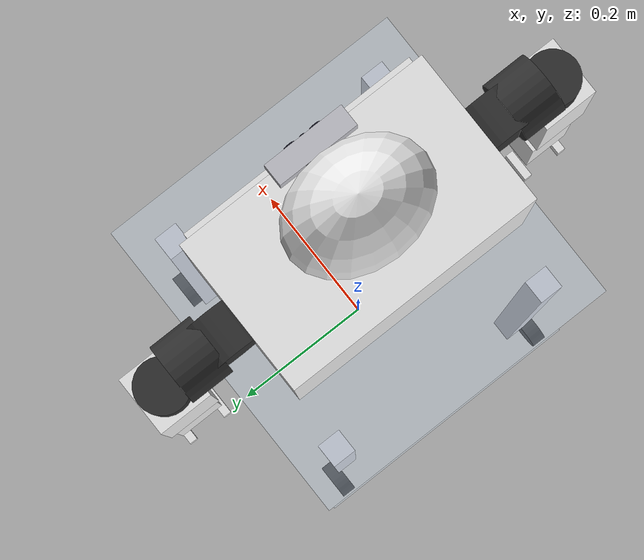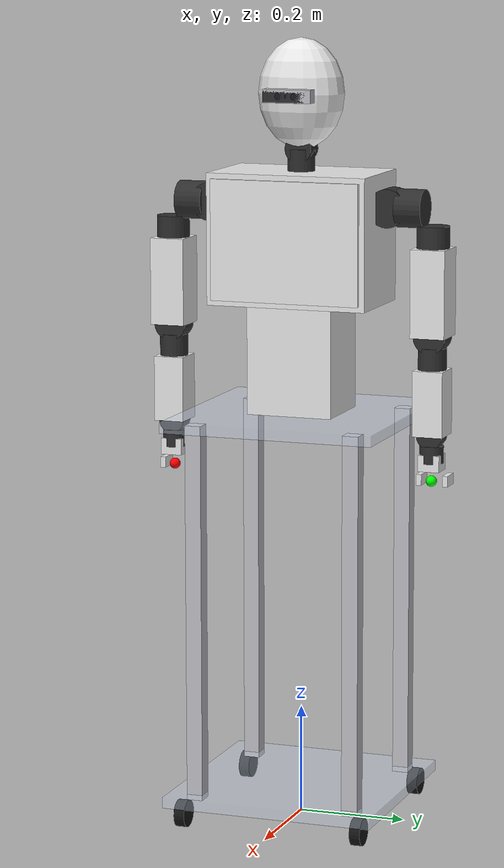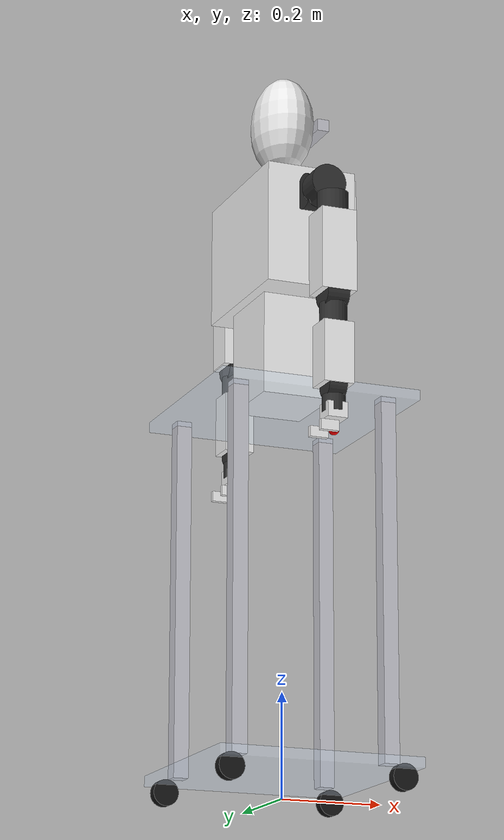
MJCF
<mujoco model="custom_humanoid_steering">
  <compiler angle="radian" autolimits="true"/>

  <asset>
    <!-- Visual Materials -->
    <material name="white_plastic" rgba="0.92 0.92 0.92 1" shininess="0.3" specular="0.2"/>
    <material name="metal_silver" rgba="0.75 0.75 0.78 1" shininess="0.8" specular="0.7"/>
    <material name="motor_black" rgba="0.18 0.18 0.18 1" shininess="0.4" specular="0.3"/>
    <material name="acrylic_glass" rgba="0.85 0.92 1.0 0.35" shininess="0.9" specular="0.9"/>
    <material name="wheel_rubber" rgba="0.08 0.08 0.08 1" shininess="0.1" specular="0.1"/>
    <material name="face_screen" rgba="0.1 0.1 0.15 1" shininess="0.9" specular="0.9"/>
  </asset>

  <default>
    <!-- Actuator and Joint defaults for Dynamixel XM430/XH430 type servos -->
    <joint damping="1.5" armature="0.06" frictionloss="0.05"/>
    <position kp="45.0" forcerange="-10 10"/>

    <!-- Hierarchical Defaults to avoid duplicate classes -->
    <default class="visual">
      <geom contype="0" conaffinity="0" group="2"/>
      <default class="stand_part">
        <geom material="metal_silver"/>
      </default>
      <default class="white_shell_visual">
        <geom material="white_plastic"/>
      </default>
      <default class="motor_block">
        <geom material="motor_black" type="cylinder"/>
      </default>
    </default>

    <default class="collision">
      <geom group="3" condim="3" friction="1.0 0.005 0.0001"/>
      <default class="white_shell_collision">
        <geom material="white_plastic"/>
      </default>
    </default>
  </default>

  <worldbody>
    <!-- Base Mobile Stand (Fixed to world for stability, wheel spin is cosmetic/passive) -->
    <body name="stand_base" pos="0 0 0.05">
      <!-- Acrylic Bottom Plate -->
      <geom name="base_plate" type="box" size="0.2 0.2 0.01" material="acrylic_glass" class="collision"/>
      <geom type="box" size="0.2 0.2 0.01" material="acrylic_glass" class="visual"/>

      <!-- Cosmetic Caster Wheels -->
      <body name="wheel_fl" pos="0.17 0.17 -0.025">
        <geom type="cylinder" size="0.025 0.01" quat="0.7071 0.7071 0 0" material="wheel_rubber" class="visual"/>
      </body>
      <body name="wheel_fr" pos="0.17 -0.17 -0.025">
        <geom type="cylinder" size="0.025 0.01" quat="0.7071 0.7071 0 0" material="wheel_rubber" class="visual"/>
      </body>
      <body name="wheel_bl" pos="-0.17 0.17 -0.025">
        <geom type="cylinder" size="0.025 0.01" quat="0.7071 0.7071 0 0" material="wheel_rubber" class="visual"/>
      </body>
      <body name="wheel_br" pos="-0.17 -0.17 -0.025">
        <geom type="cylinder" size="0.025 0.01" quat="0.7071 0.7071 0 0" material="wheel_rubber" class="visual"/>
      </body>

      <!-- Aluminum Profile Extrusions (Vertical Frame) -->
      <geom class="stand_part" type="box" size="0.015 0.015 0.35" pos="0.15 0.15 0.35"/>
      <geom class="stand_part" type="box" size="0.015 0.015 0.35" pos="0.15 -0.15 0.35"/>
      <geom class="stand_part" type="box" size="0.015 0.015 0.35" pos="-0.15 0.15 0.35"/>
      <geom class="stand_part" type="box" size="0.015 0.015 0.35" pos="-0.15 -0.15 0.35"/>

      <!-- Acrylic Top Plate -->
      <geom type="box" size="0.2 0.2 0.01" pos="0 0 0.7" material="acrylic_glass" class="collision"/>
      <geom type="box" size="0.2 0.2 0.01" pos="0 0 0.7" material="acrylic_glass" class="visual"/>

      <!-- ==================== ROBOT BODY START ==================== -->
      <body name="torso" pos="0 0 0.71">
        <!-- Lower Trapezoidal Torso Section -->
        <geom class="white_shell_collision" type="box" size="0.07 0.08 0.1" pos="0 0 0.1"/>
        <geom class="white_shell_visual" type="box" size="0.07 0.08 0.1" pos="0 0 0.1"/>

        <!-- Upper Chest Section -->
        <geom class="white_shell_collision" type="box" size="0.09 0.15 0.12" pos="0 0 0.32"/>
        <geom class="white_shell_visual" type="box" size="0.09 0.15 0.12" pos="0 0 0.32"/>
        <!-- Chest Front Cover plate detail -->
        <geom class="white_shell_visual" type="box" size="0.005 0.14 0.11" pos="0.092 0 0.32"/>

        <!-- ==================== HEAD (2 DOF) ==================== -->
        <body name="head_yaw_link" pos="0 0 0.44">
          <joint name="head_yaw" type="hinge" axis="0 0 1" range="-1.57 1.57"/>
          <geom class="motor_block" size="0.025 0.02" pos="0 0 0.02"/>

          <body name="head_tilt_link" pos="0 0 0.04">
            <joint name="head_tilt" type="hinge" axis="0 1 0" range="-0.8 0.8"/>
            <geom class="motor_block" size="0.025 0.02" quat="0.7071 0 0.7071 0" pos="0 0 0"/>

            <!-- Oval Head Shell -->
            <geom class="white_shell_collision" type="ellipsoid" size="0.06 0.08 0.1" pos="0 0 0.1"/>
            <geom class="white_shell_visual" type="ellipsoid" size="0.06 0.08 0.1" pos="0 0 0.1"/>

            <!-- RealSense-Style Depth Camera Assembly -->
            <geom type="box" size="0.005 0.015 0.008" pos="0.055 0 0.1" material="motor_black" class="visual"/>
            <geom type="box" size="0.012 0.045 0.012" pos="0.07 0 0.1" material="metal_silver" class="visual"/>
            <geom type="box" size="0.011 0.044 0.011" pos="0.071 0 0.1" material="motor_black" class="visual"/>
            <geom type="cylinder" size="0.006 0.002" pos="0.082 0.015 0.1" quat="0.7071 0 0.7071 0" material="face_screen" class="visual"/>
            <geom type="cylinder" size="0.006 0.002" pos="0.082 -0.015 0.1" quat="0.7071 0 0.7071 0" material="face_screen" class="visual"/>
            <geom type="cylinder" size="0.003 0.002" pos="0.082 0 0.1" quat="0.7071 0 0.7071 0" material="face_screen" class="visual"/>

            <camera name="head_camera" pos="0.082 0 0.1" xyaxes="0 -1 0 0 0 1" fovy="60"/>
          </body>
        </body>

        <!-- ==================== LEFT ARM (7 DOF + Gripper) ==================== -->
        <!-- Shoulder Pitch (J1) -->
        <body name="l_sho_pitch_link" pos="0 0.17 0.38">
          <joint name="l_sho_pitch" type="hinge" axis="0 1 0" range="-2.5 2.5"/>
          <geom class="motor_block" size="0.035 0.025" quat="0.7071 0 0.7071 0" pos="0 0 0"/>

          <!-- Shoulder Roll (J2) -->
          <body name="l_sho_roll_link" pos="0 0.04 0">
            <joint name="l_sho_roll" type="hinge" axis="1 0 0" range="-0.2 2.0"/>
            <geom class="motor_block" size="0.035 0.025" quat="0.7071 0.7071 0 0" pos="0 0 0"/>

            <!-- Shoulder Yaw (J3) -->
            <body name="l_sho_yaw_link" pos="0 0.04 -0.05">
              <joint name="l_sho_yaw" type="hinge" axis="0 0 1" range="-1.57 1.57"/>
              <geom class="motor_block" size="0.03 0.02" pos="0 0 0"/>

              <!-- Upper Arm Link -->
              <geom class="white_shell_collision" type="box" size="0.035 0.032 0.08" pos="0 0 -0.1"/>
              <geom class="white_shell_visual" type="box" size="0.035 0.032 0.08" pos="0 0 -0.1"/>

              <!-- Elbow Pitch (J4) -->
              <body name="l_el_pitch_link" pos="0 0 -0.18">
                <joint name="l_el_pitch" type="hinge" axis="0 1 0" range="-2.4 0.1"/>
                <geom class="motor_block" size="0.03 0.022" quat="0.7071 0 0.7071 0" pos="0 0 0"/>

                <!-- Forearm Yaw (J5) -->
                <body name="l_forearm_yaw_link" pos="0 0 -0.04">
                  <joint name="l_forearm_yaw" type="hinge" axis="0 0 1" range="-2.8 2.8"/>
                  <geom class="motor_block" size="0.026 0.02" pos="0 0 0"/>

                  <!-- Forearm Link -->
                  <geom class="white_shell_collision" type="box" size="0.03 0.028 0.06" pos="0 0 -0.08"/>
                  <geom class="white_shell_visual" type="box" size="0.03 0.028 0.06" pos="0 0 -0.08"/>

                  <!-- Wrist Pitch (J6) -->
                  <body name="l_wrist_pitch_link" pos="0 0 -0.14">
                    <joint name="l_wrist_pitch" type="hinge" axis="0 1 0" range="-1.57 1.57"/>
                    <geom class="motor_block" size="0.024 0.018" quat="0.7071 0 0.7071 0" pos="0 0 0"/>

                    <!-- Wrist Yaw (J7) -->
                    <body name="l_wrist_yaw_link" pos="0 0 -0.035">
                      <joint name="l_wrist_yaw" type="hinge" axis="1 0 0" range="-1.57 1.57"/>
                      <geom class="motor_block" size="0.022 0.016" pos="0 0 0"/>

                      <!-- Gripper Base Box -->
                      <geom class="white_shell_collision" type="box" size="0.02 0.02 0.015" pos="0 0 -0.015"/>
                      <geom class="white_shell_visual" type="box" size="0.02 0.02 0.015" pos="0 0 -0.015"/>

                      <!-- End-effector tracking site -->
                      <site name="l_eef" pos="0 0 -0.05" size="0.01" rgba="0 1 0 1"/>

                      <!-- Parallel Gripper (Slide fingers in local Y-axis) -->
                      <body name="l_gripper_l_finger" pos="-0.02 0.025 -0.04">
                        <joint name="l_finger_l_joint" type="slide" axis="0 -1 0" range="0 0.02"/>
                        <geom class="white_shell_collision" type="box" size="0.018 0.005 0.01" pos="0 0 -0.01"/>
                        <geom class="white_shell_visual" type="box" size="0.018 0.005 0.01" pos="0 0 -0.01"/>
                      </body>
                      <body name="l_gripper_r_finger" pos="-0.02 -0.025 -0.04">
                        <joint name="l_finger_r_joint" type="slide" axis="0 1 0" range="0 0.02"/>
                        <geom class="white_shell_collision" type="box" size="0.018 0.005 0.01" pos="0 0 -0.01"/>
                        <geom class="white_shell_visual" type="box" size="0.018 0.005 0.01" pos="0 0 -0.01"/>
                      </body>
                    </body>
                  </body>
                </body>
              </body>
            </body>
          </body>
        </body>

        <!-- ==================== RIGHT ARM (7 DOF + Gripper) ==================== -->
        <!-- Shoulder Pitch (J1) -->
        <body name="r_sho_pitch_link" pos="0 -0.17 0.38">
          <joint name="r_sho_pitch" type="hinge" axis="0 -1 0" range="-2.5 2.5"/>
          <geom class="motor_block" size="0.035 0.025" quat="0.7071 0 0.7071 0" pos="0 0 0"/>

          <!-- Shoulder Roll (J2) -->
          <body name="r_sho_roll_link" pos="0 -0.04 0">
            <joint name="r_sho_roll" type="hinge" axis="-1 0 0" range="-2.0 0.2"/>
            <geom class="motor_block" size="0.035 0.025" quat="0.7071 -0.7071 0 0" pos="0 0 0"/>

            <!-- Shoulder Yaw (J3) -->
            <body name="r_sho_yaw_link" pos="0 -0.04 -0.05">
              <joint name="r_sho_yaw" type="hinge" axis="0 0 -1" range="-1.57 1.57"/>
              <geom class="motor_block" size="0.03 0.02" pos="0 0 0"/>

              <!-- Upper Arm Link -->
              <geom class="white_shell_collision" type="box" size="0.035 0.032 0.08" pos="0 0 -0.1"/>
              <geom class="white_shell_visual" type="box" size="0.035 0.032 0.08" pos="0 0 -0.1"/>

              <!-- Elbow Pitch (J4) -->
              <body name="r_el_pitch_link" pos="0 0 -0.18">
                <joint name="r_el_pitch" type="hinge" axis="0 -1 0" range="-0.1 2.4"/>
                <geom class="motor_block" size="0.03 0.022" quat="0.7071 0 0.7071 0" pos="0 0 0"/>

                <!-- Forearm Yaw (J5) -->
                <body name="r_forearm_yaw_link" pos="0 0 -0.04">
                  <joint name="r_forearm_yaw" type="hinge" axis="0 0 -1" range="-2.8 2.8"/>
                  <geom class="motor_block" size="0.026 0.02" pos="0 0 0"/>

                  <!-- Forearm Link -->
                  <geom class="white_shell_collision" type="box" size="0.03 0.028 0.06" pos="0 0 -0.08"/>
                  <geom class="white_shell_visual" type="box" size="0.03 0.028 0.06" pos="0 0 -0.08"/>

                  <!-- Wrist Pitch (J6) -->
                  <body name="r_wrist_pitch_link" pos="0 0 -0.14">
                    <joint name="r_wrist_pitch" type="hinge" axis="0 -1 0" range="-1.57 1.57"/>
                    <geom class="motor_block" size="0.024 0.018" quat="0.7071 0 0.7071 0" pos="0 0 0"/>

                    <!-- Wrist Yaw (J7) -->
                    <body name="r_wrist_yaw_link" pos="0 0 -0.035">
                      <joint name="r_wrist_yaw" type="hinge" axis="-1 0 0" range="-1.57 1.57"/>
                      <geom class="motor_block" size="0.022 0.016" pos="0 0 0"/>

                      <!-- Gripper Base Box -->
                      <geom class="white_shell_collision" type="box" size="0.02 0.02 0.015" pos="0 0 -0.015"/>
                      <geom class="white_shell_visual" type="box" size="0.02 0.02 0.015" pos="0 0 -0.015"/>

                      <!-- End-effector tracking site -->
                      <site name="r_eef" pos="0 0 -0.05" size="0.01" rgba="1 0 0 1"/>

                      <!-- Parallel Gripper (Slide fingers in local Y-axis) -->
                      <body name="r_gripper_l_finger" pos="-0.02 0.025 -0.04">
                        <joint name="r_finger_l_joint" type="slide" axis="0 -1 0" range="0 0.02"/>
                        <geom class="white_shell_collision" type="box" size="0.018 0.005 0.01" pos="0 0 -0.01"/>
                        <geom class="white_shell_visual" type="box" size="0.018 0.005 0.01" pos="0 0 -0.01"/>
                      </body>
                      <body name="r_gripper_r_finger" pos="-0.02 -0.025 -0.04">
                        <joint name="r_finger_r_joint" type="slide" axis="0 1 0" range="0 0.02"/>
                        <geom class="white_shell_collision" type="box" size="0.018 0.005 0.01" pos="0 0 -0.01"/>
                        <geom class="white_shell_visual" type="box" size="0.018 0.005 0.01" pos="0 0 -0.01"/>
                      </body>
                    </body>
                  </body>
                </body>
              </body>
            </body>
          </body>
        </body>
      </body>
    </body>
  </worldbody>

  <!-- Actuators (Position/Torque Control) -->
  <actuator>
    <!-- Head (2 DOF) -->
    <position name="head_yaw_act" joint="head_yaw" ctrlrange="-1.57 1.57"/>
    <position name="head_tilt_act" joint="head_tilt" ctrlrange="-0.8 0.8"/>

    <!-- Left Arm (7 DOF - Torque Motors) -->
    <motor name="l_sho_pitch_act" joint="l_sho_pitch" ctrlrange="-25 25"/>
    <motor name="l_sho_roll_act" joint="l_sho_roll" ctrlrange="-25 25"/>
    <motor name="l_sho_yaw_act" joint="l_sho_yaw" ctrlrange="-25 25"/>
    <motor name="l_el_pitch_act" joint="l_el_pitch" ctrlrange="-25 25"/>
    <motor name="l_forearm_yaw_act" joint="l_forearm_yaw" ctrlrange="-25 25"/>
    <motor name="l_wrist_pitch_act" joint="l_wrist_pitch" ctrlrange="-25 25"/>
    <motor name="l_wrist_yaw_act" joint="l_wrist_yaw" ctrlrange="-25 25"/>
    <!-- Left Gripper (Slide joint, range 0 to 0.02m) -->
    <position name="l_gripper_l_act" joint="l_finger_l_joint" ctrlrange="0 0.02" kp="200.0" forcerange="-10 10"/>
    <position name="l_gripper_r_act" joint="l_finger_r_joint" ctrlrange="0 0.02" kp="200.0" forcerange="-10 10"/>

    <!-- Right Arm (7 DOF - Torque Motors) -->
    <motor name="r_sho_pitch_act" joint="r_sho_pitch" ctrlrange="-25 25"/>
    <motor name="r_sho_roll_act" joint="r_sho_roll" ctrlrange="-25 25"/>
    <motor name="r_sho_yaw_act" joint="r_sho_yaw" ctrlrange="-25 25"/>
    <motor name="r_el_pitch_act" joint="r_el_pitch" ctrlrange="-25 25"/>
    <motor name="r_forearm_yaw_act" joint="r_forearm_yaw" ctrlrange="-25 25"/>
    <motor name="r_wrist_pitch_act" joint="r_wrist_pitch" ctrlrange="-25 25"/>
    <motor name="r_wrist_yaw_act" joint="r_wrist_yaw" ctrlrange="-25 25"/>
    <!-- Right Gripper (Slide joint, range 0 to 0.02m) -->
    <position name="r_gripper_l_act" joint="r_finger_l_joint" ctrlrange="0 0.02" kp="200.0" forcerange="-10 10"/>
    <position name="r_gripper_r_act" joint="r_finger_r_joint" ctrlrange="0 0.02" kp="200.0" forcerange="-10 10"/>
  </actuator>
</mujoco>
